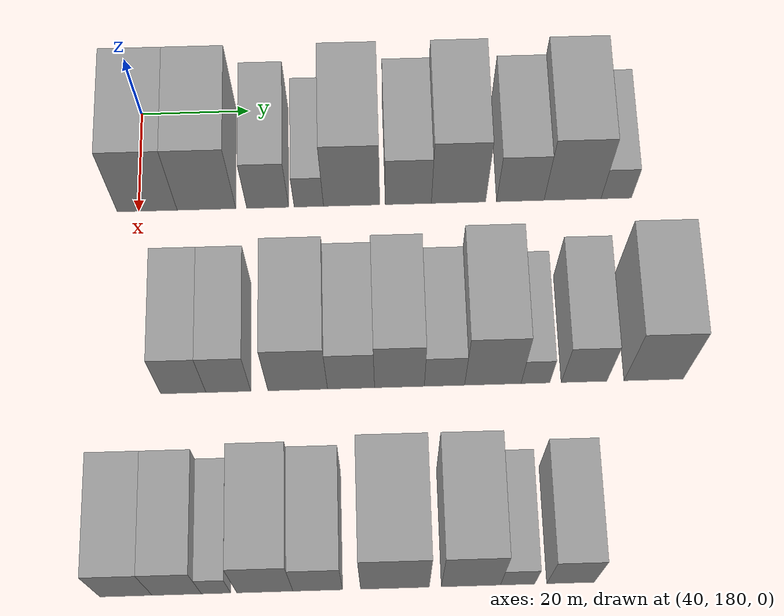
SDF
<sdf version="1.6">
 <world name="default">
  <model name="building_58">
   <static>1</static>
   <pose>50.0000 181.5471 0 0.000000 0.000000 0.000000</pose>
   <link name="link">
    <pose>0 0 12.00 0 0 0</pose>
    <collision name="collision"><geometry><box><size>20.0000 10.9324 24.0000</size></box></geometry></collision>
    <visual name="visual">
     <cast_shadows>0</cast_shadows>
     <geometry><box><size>20.0000 10.9324 24.0000</size></box></geometry>
     <material>
      <script>
       <uri>model://grey_wall/materials/scripts</uri>
       <uri>model://grey_wall/materials/textures</uri>
       <name>vrc/grey_wall</name>
      </script>
     </material>
    </visual>
   </link>
  </model>
  <model name="building_59">
   <static>1</static>
   <pose>50.0000 192.3717 0 0.000000 0.000000 0.000000</pose>
   <link name="link">
    <pose>0 0 12.00 0 0 0</pose>
    <collision name="collision"><geometry><box><size>20.0000 10.7169 24.0000</size></box></geometry></collision>
    <visual name="visual">
     <cast_shadows>0</cast_shadows>
     <geometry><box><size>20.0000 10.7169 24.0000</size></box></geometry>
     <material>
      <script>
       <uri>model://grey_wall/materials/scripts</uri>
       <uri>model://grey_wall/materials/textures</uri>
       <name>vrc/grey_wall</name>
      </script>
     </material>
    </visual>
   </link>
  </model>
  <model name="building_60">
   <static>1</static>
   <pose>50.0000 203.5715 0 0.000000 0.000000 0.000000</pose>
   <link name="link">
    <pose>0 0 9.00 0 0 0</pose>
    <collision name="collision"><geometry><box><size>20.0000 7.6826 18.0000</size></box></geometry></collision>
    <visual name="visual">
     <cast_shadows>0</cast_shadows>
     <geometry><box><size>20.0000 7.6826 18.0000</size></box></geometry>
     <material>
      <script>
       <uri>model://grey_wall/materials/scripts</uri>
       <uri>model://grey_wall/materials/textures</uri>
       <name>vrc/grey_wall</name>
      </script>
     </material>
    </visual>
   </link>
  </model>
  <model name="building_61">
   <static>1</static>
   <pose>50.0000 211.0909 0 0.000000 0.000000 0.000000</pose>
   <link name="link">
    <pose>0 0 6.00 0 0 0</pose>
    <collision name="collision"><geometry><box><size>20.0000 5.3562 12.0000</size></box></geometry></collision>
    <visual name="visual">
     <cast_shadows>0</cast_shadows>
     <geometry><box><size>20.0000 5.3562 12.0000</size></box></geometry>
     <material>
      <script>
       <uri>model://grey_wall/materials/scripts</uri>
       <uri>model://grey_wall/materials/textures</uri>
       <name>vrc/grey_wall</name>
      </script>
     </material>
    </visual>
   </link>
  </model>
  <model name="building_62">
   <static>1</static>
   <pose>50.0000 218.9230 0 0.000000 0.000000 0.000000</pose>
   <link name="link">
    <pose>0 0 12.00 0 0 0</pose>
    <collision name="collision"><geometry><box><size>20.0000 10.3079 24.0000</size></box></geometry></collision>
    <visual name="visual">
     <cast_shadows>0</cast_shadows>
     <geometry><box><size>20.0000 10.3079 24.0000</size></box></geometry>
     <material>
      <script>
       <uri>model://grey_wall/materials/scripts</uri>
       <uri>model://grey_wall/materials/textures</uri>
       <name>vrc/grey_wall</name>
      </script>
     </material>
    </visual>
   </link>
  </model>
  <model name="building_63">
   <static>1</static>
   <pose>50.0000 229.2952 0 0.000000 0.000000 0.000000</pose>
   <link name="link">
    <pose>0 0 9.00 0 0 0</pose>
    <collision name="collision"><geometry><box><size>20.0000 8.4365 18.0000</size></box></geometry></collision>
    <visual name="visual">
     <cast_shadows>0</cast_shadows>
     <geometry><box><size>20.0000 8.4365 18.0000</size></box></geometry>
     <material>
      <script>
       <uri>model://grey_wall/materials/scripts</uri>
       <uri>model://grey_wall/materials/textures</uri>
       <name>vrc/grey_wall</name>
      </script>
     </material>
    </visual>
   </link>
  </model>
  <model name="building_64">
   <static>1</static>
   <pose>50.0000 238.4897 0 0.000000 0.000000 0.000000</pose>
   <link name="link">
    <pose>0 0 12.00 0 0 0</pose>
    <collision name="collision"><geometry><box><size>20.0000 9.9524 24.0000</size></box></geometry></collision>
    <visual name="visual">
     <cast_shadows>0</cast_shadows>
     <geometry><box><size>20.0000 9.9524 24.0000</size></box></geometry>
     <material>
      <script>
       <uri>model://grey_wall/materials/scripts</uri>
       <uri>model://grey_wall/materials/textures</uri>
       <name>vrc/grey_wall</name>
      </script>
     </material>
    </visual>
   </link>
  </model>
  <model name="building_65">
   <static>1</static>
   <pose>50.0000 249.8258 0 0.000000 0.000000 0.000000</pose>
   <link name="link">
    <pose>0 0 9.00 0 0 0</pose>
    <collision name="collision"><geometry><box><size>20.0000 8.7198 18.0000</size></box></geometry></collision>
    <visual name="visual">
     <cast_shadows>0</cast_shadows>
     <geometry><box><size>20.0000 8.7198 18.0000</size></box></geometry>
     <material>
      <script>
       <uri>model://grey_wall/materials/scripts</uri>
       <uri>model://grey_wall/materials/textures</uri>
       <name>vrc/grey_wall</name>
      </script>
     </material>
    </visual>
   </link>
  </model>
  <model name="building_66">
   <static>1</static>
   <pose>50.0000 259.4110 0 0.000000 0.000000 0.000000</pose>
   <link name="link">
    <pose>0 0 12.00 0 0 0</pose>
    <collision name="collision"><geometry><box><size>20.0000 10.4507 24.0000</size></box></geometry></collision>
    <visual name="visual">
     <cast_shadows>0</cast_shadows>
     <geometry><box><size>20.0000 10.4507 24.0000</size></box></geometry>
     <material>
      <script>
       <uri>model://grey_wall/materials/scripts</uri>
       <uri>model://grey_wall/materials/textures</uri>
       <name>vrc/grey_wall</name>
      </script>
     </material>
    </visual>
   </link>
  </model>
  <model name="building_67">
   <static>1</static>
   <pose>50.0000 267.4481 0 0.000000 0.000000 0.000000</pose>
   <link name="link">
    <pose>0 0 6.00 0 0 0</pose>
    <collision name="collision"><geometry><box><size>20.0000 5.6235 12.0000</size></box></geometry></collision>
    <visual name="visual">
     <cast_shadows>0</cast_shadows>
     <geometry><box><size>20.0000 5.6235 12.0000</size></box></geometry>
     <material>
      <script>
       <uri>model://grey_wall/materials/scripts</uri>
       <uri>model://grey_wall/materials/textures</uri>
       <name>vrc/grey_wall</name>
      </script>
     </material>
    </visual>
   </link>
  </model>
  <model name="building_140">
   <static>1</static>
   <pose>85.0000 188.8514 0 0.000000 0.000000 0.000000</pose>
   <link name="link">
    <pose>0 0 9.00 0 0 0</pose>
    <collision name="collision"><geometry><box><size>20.0000 7.8658 18.0000</size></box></geometry></collision>
    <visual name="visual">
     <cast_shadows>0</cast_shadows>
     <geometry><box><size>20.0000 7.8658 18.0000</size></box></geometry>
     <material>
      <script>
       <uri>model://grey_wall/materials/scripts</uri>
       <uri>model://grey_wall/materials/textures</uri>
       <name>vrc/grey_wall</name>
      </script>
     </material>
    </visual>
   </link>
  </model>
  <model name="building_141">
   <static>1</static>
   <pose>85.0000 196.6980 0 0.000000 0.000000 0.000000</pose>
   <link name="link">
    <pose>0 0 9.00 0 0 0</pose>
    <collision name="collision"><geometry><box><size>20.0000 7.8273 18.0000</size></box></geometry></collision>
    <visual name="visual">
     <cast_shadows>0</cast_shadows>
     <geometry><box><size>20.0000 7.8273 18.0000</size></box></geometry>
     <material>
      <script>
       <uri>model://grey_wall/materials/scripts</uri>
       <uri>model://grey_wall/materials/textures</uri>
       <name>vrc/grey_wall</name>
      </script>
     </material>
    </visual>
   </link>
  </model>
  <model name="building_142">
   <static>1</static>
   <pose>85.0000 208.8113 0 0.000000 0.000000 0.000000</pose>
   <link name="link">
    <pose>0 0 10.50 0 0 0</pose>
    <collision name="collision"><geometry><box><size>20.0000 10.3994 21.0000</size></box></geometry></collision>
    <visual name="visual">
     <cast_shadows>0</cast_shadows>
     <geometry><box><size>20.0000 10.3994 21.0000</size></box></geometry>
     <material>
      <script>
       <uri>model://grey_wall/materials/scripts</uri>
       <uri>model://grey_wall/materials/textures</uri>
       <name>vrc/grey_wall</name>
      </script>
     </material>
    </visual>
   </link>
  </model>
  <model name="building_143">
   <static>1</static>
   <pose>85.0000 218.1166 0 0.000000 0.000000 0.000000</pose>
   <link name="link">
    <pose>0 0 9.00 0 0 0</pose>
    <collision name="collision"><geometry><box><size>20.0000 8.2112 18.0000</size></box></geometry></collision>
    <visual name="visual">
     <cast_shadows>0</cast_shadows>
     <geometry><box><size>20.0000 8.2112 18.0000</size></box></geometry>
     <material>
      <script>
       <uri>model://grey_wall/materials/scripts</uri>
       <uri>model://grey_wall/materials/textures</uri>
       <name>vrc/grey_wall</name>
      </script>
     </material>
    </visual>
   </link>
  </model>
  <model name="building_144">
   <static>1</static>
   <pose>85.0000 226.5747 0 0.000000 0.000000 0.000000</pose>
   <link name="link">
    <pose>0 0 10.50 0 0 0</pose>
    <collision name="collision"><geometry><box><size>20.0000 8.7051 21.0000</size></box></geometry></collision>
    <visual name="visual">
     <cast_shadows>0</cast_shadows>
     <geometry><box><size>20.0000 8.7051 21.0000</size></box></geometry>
     <material>
      <script>
       <uri>model://grey_wall/materials/scripts</uri>
       <uri>model://grey_wall/materials/textures</uri>
       <name>vrc/grey_wall</name>
      </script>
     </material>
    </visual>
   </link>
  </model>
  <model name="building_145">
   <static>1</static>
   <pose>85.0000 234.4475 0 0.000000 0.000000 0.000000</pose>
   <link name="link">
    <pose>0 0 7.50 0 0 0</pose>
    <collision name="collision"><geometry><box><size>20.0000 7.0405 15.0000</size></box></geometry></collision>
    <visual name="visual">
     <cast_shadows>0</cast_shadows>
     <geometry><box><size>20.0000 7.0405 15.0000</size></box></geometry>
     <material>
      <script>
       <uri>model://grey_wall/materials/scripts</uri>
       <uri>model://grey_wall/materials/textures</uri>
       <name>vrc/grey_wall</name>
      </script>
     </material>
    </visual>
   </link>
  </model>
  <model name="building_146">
   <static>1</static>
   <pose>85.0000 242.9093 0 0.000000 0.000000 0.000000</pose>
   <link name="link">
    <pose>0 0 12.00 0 0 0</pose>
    <collision name="collision"><geometry><box><size>20.0000 9.8830 24.0000</size></box></geometry></collision>
    <visual name="visual">
     <cast_shadows>0</cast_shadows>
     <geometry><box><size>20.0000 9.8830 24.0000</size></box></geometry>
     <material>
      <script>
       <uri>model://grey_wall/materials/scripts</uri>
       <uri>model://grey_wall/materials/textures</uri>
       <name>vrc/grey_wall</name>
      </script>
     </material>
    </visual>
   </link>
  </model>
  <model name="building_147">
   <static>1</static>
   <pose>85.0000 250.3778 0 0.000000 0.000000 0.000000</pose>
   <link name="link">
    <pose>0 0 6.00 0 0 0</pose>
    <collision name="collision"><geometry><box><size>20.0000 5.0541 12.0000</size></box></geometry></collision>
    <visual name="visual">
     <cast_shadows>0</cast_shadows>
     <geometry><box><size>20.0000 5.0541 12.0000</size></box></geometry>
     <material>
      <script>
       <uri>model://grey_wall/materials/scripts</uri>
       <uri>model://grey_wall/materials/textures</uri>
       <name>vrc/grey_wall</name>
      </script>
     </material>
    </visual>
   </link>
  </model>
  <model name="building_148">
   <static>1</static>
   <pose>85.0000 258.9139 0 0.000000 0.000000 0.000000</pose>
   <link name="link">
    <pose>0 0 9.00 0 0 0</pose>
    <collision name="collision"><geometry><box><size>20.0000 8.0181 18.0000</size></box></geometry></collision>
    <visual name="visual">
     <cast_shadows>0</cast_shadows>
     <geometry><box><size>20.0000 8.0181 18.0000</size></box></geometry>
     <material>
      <script>
       <uri>model://grey_wall/materials/scripts</uri>
       <uri>model://grey_wall/materials/textures</uri>
       <name>vrc/grey_wall</name>
      </script>
     </material>
    </visual>
   </link>
  </model>
  <model name="building_149">
   <static>1</static>
   <pose>85.0000 271.1254 0 0.000000 0.000000 0.000000</pose>
   <link name="link">
    <pose>0 0 12.00 0 0 0</pose>
    <collision name="collision"><geometry><box><size>20.0000 10.4050 24.0000</size></box></geometry></collision>
    <visual name="visual">
     <cast_shadows>0</cast_shadows>
     <geometry><box><size>20.0000 10.4050 24.0000</size></box></geometry>
     <material>
      <script>
       <uri>model://grey_wall/materials/scripts</uri>
       <uri>model://grey_wall/materials/textures</uri>
       <name>vrc/grey_wall</name>
      </script>
     </material>
    </visual>
   </link>
  </model>
  <model name="building_218">
   <static>1</static>
   <pose>120.0000 180.0381 0 0.000000 0.000000 0.000000</pose>
   <link name="link">
    <pose>0 0 9.00 0 0 0</pose>
    <collision name="collision"><geometry><box><size>20.0000 8.6977 18.0000</size></box></geometry></collision>
    <visual name="visual">
     <cast_shadows>0</cast_shadows>
     <geometry><box><size>20.0000 8.6977 18.0000</size></box></geometry>
     <material>
      <script>
       <uri>model://grey_wall/materials/scripts</uri>
       <uri>model://grey_wall/materials/textures</uri>
       <name>vrc/grey_wall</name>
      </script>
     </material>
    </visual>
   </link>
  </model>
  <model name="building_219">
   <static>1</static>
   <pose>120.0000 188.4820 0 0.000000 0.000000 0.000000</pose>
   <link name="link">
    <pose>0 0 9.00 0 0 0</pose>
    <collision name="collision"><geometry><box><size>20.0000 8.1901 18.0000</size></box></geometry></collision>
    <visual name="visual">
     <cast_shadows>0</cast_shadows>
     <geometry><box><size>20.0000 8.1901 18.0000</size></box></geometry>
     <material>
      <script>
       <uri>model://grey_wall/materials/scripts</uri>
       <uri>model://grey_wall/materials/textures</uri>
       <name>vrc/grey_wall</name>
      </script>
     </material>
    </visual>
   </link>
  </model>
  <model name="building_220">
   <static>1</static>
   <pose>120.0000 195.0101 0 0.000000 0.000000 0.000000</pose>
   <link name="link">
    <pose>0 0 6.00 0 0 0</pose>
    <collision name="collision"><geometry><box><size>20.0000 4.8660 12.0000</size></box></geometry></collision>
    <visual name="visual">
     <cast_shadows>0</cast_shadows>
     <geometry><box><size>20.0000 4.8660 12.0000</size></box></geometry>
     <material>
      <script>
       <uri>model://grey_wall/materials/scripts</uri>
       <uri>model://grey_wall/materials/textures</uri>
       <name>vrc/grey_wall</name>
      </script>
     </material>
    </visual>
   </link>
  </model>
  <model name="building_221">
   <static>1</static>
   <pose>120.0000 203.1090 0 0.000000 0.000000 0.000000</pose>
   <link name="link">
    <pose>0 0 10.50 0 0 0</pose>
    <collision name="collision"><geometry><box><size>20.0000 9.3318 21.0000</size></box></geometry></collision>
    <visual name="visual">
     <cast_shadows>0</cast_shadows>
     <geometry><box><size>20.0000 9.3318 21.0000</size></box></geometry>
     <material>
      <script>
       <uri>model://grey_wall/materials/scripts</uri>
       <uri>model://grey_wall/materials/textures</uri>
       <name>vrc/grey_wall</name>
      </script>
     </material>
    </visual>
   </link>
  </model>
  <model name="building_222">
   <static>1</static>
   <pose>120.0000 211.9015 0 0.000000 0.000000 0.000000</pose>
   <link name="link">
    <pose>0 0 9.00 0 0 0</pose>
    <collision name="collision"><geometry><box><size>20.0000 8.2532 18.0000</size></box></geometry></collision>
    <visual name="visual">
     <cast_shadows>0</cast_shadows>
     <geometry><box><size>20.0000 8.2532 18.0000</size></box></geometry>
     <material>
      <script>
       <uri>model://grey_wall/materials/scripts</uri>
       <uri>model://grey_wall/materials/textures</uri>
       <name>vrc/grey_wall</name>
      </script>
     </material>
    </visual>
   </link>
  </model>
  <model name="building_223">
   <static>1</static>
   <pose>120.0000 224.7451 0 0.000000 0.000000 0.000000</pose>
   <link name="link">
    <pose>0 0 12.00 0 0 0</pose>
    <collision name="collision"><geometry><box><size>20.0000 11.4339 24.0000</size></box></geometry></collision>
    <visual name="visual">
     <cast_shadows>0</cast_shadows>
     <geometry><box><size>20.0000 11.4339 24.0000</size></box></geometry>
     <material>
      <script>
       <uri>model://grey_wall/materials/scripts</uri>
       <uri>model://grey_wall/materials/textures</uri>
       <name>vrc/grey_wall</name>
      </script>
     </material>
    </visual>
   </link>
  </model>
  <model name="building_224">
   <static>1</static>
   <pose>120.0000 237.3980 0 0.000000 0.000000 0.000000</pose>
   <link name="link">
    <pose>0 0 12.00 0 0 0</pose>
    <collision name="collision"><geometry><box><size>20.0000 9.8719 24.0000</size></box></geometry></collision>
    <visual name="visual">
     <cast_shadows>0</cast_shadows>
     <geometry><box><size>20.0000 9.8719 24.0000</size></box></geometry>
     <material>
      <script>
       <uri>model://grey_wall/materials/scripts</uri>
       <uri>model://grey_wall/materials/textures</uri>
       <name>vrc/grey_wall</name>
      </script>
     </material>
    </visual>
   </link>
  </model>
  <model name="building_225">
   <static>1</static>
   <pose>120.0000 245.1958 0 0.000000 0.000000 0.000000</pose>
   <link name="link">
    <pose>0 0 6.00 0 0 0</pose>
    <collision name="collision"><geometry><box><size>20.0000 5.7238 12.0000</size></box></geometry></collision>
    <visual name="visual">
     <cast_shadows>0</cast_shadows>
     <geometry><box><size>20.0000 5.7238 12.0000</size></box></geometry>
     <material>
      <script>
       <uri>model://grey_wall/materials/scripts</uri>
       <uri>model://grey_wall/materials/textures</uri>
       <name>vrc/grey_wall</name>
      </script>
     </material>
    </visual>
   </link>
  </model>
  <model name="building_226">
   <static>1</static>
   <pose>120.0000 254.0296 0 0.000000 0.000000 0.000000</pose>
   <link name="link">
    <pose>0 0 9.00 0 0 0</pose>
    <collision name="collision"><geometry><box><size>20.0000 7.9437 18.0000</size></box></geometry></collision>
    <visual name="visual">
     <cast_shadows>0</cast_shadows>
     <geometry><box><size>20.0000 7.9437 18.0000</size></box></geometry>
     <material>
      <script>
       <uri>model://grey_wall/materials/scripts</uri>
       <uri>model://grey_wall/materials/textures</uri>
       <name>vrc/grey_wall</name>
      </script>
     </material>
    </visual>
   </link>
  </model>
 </world>
</sdf>
